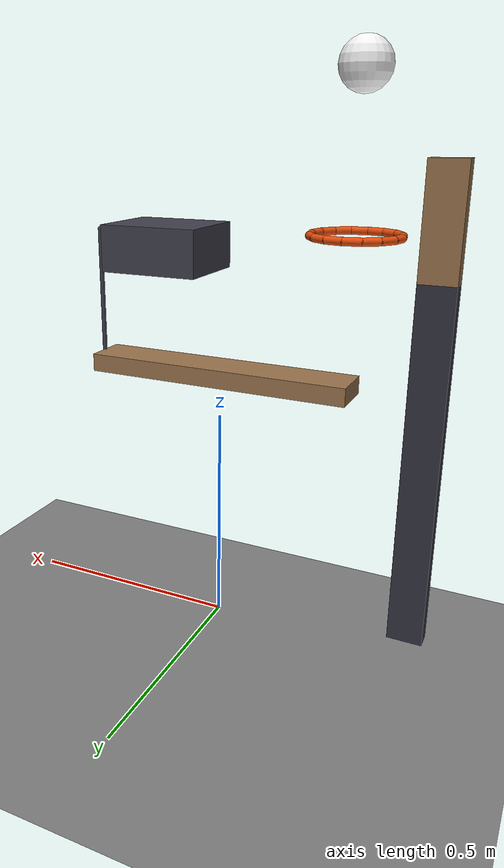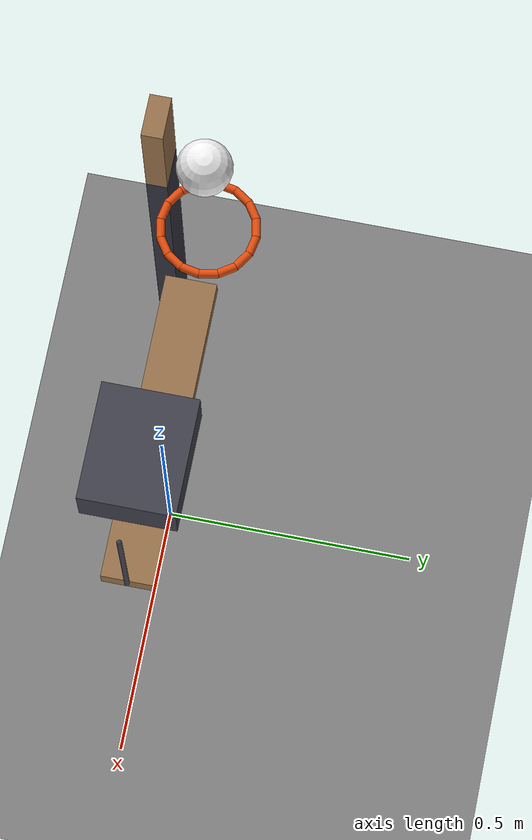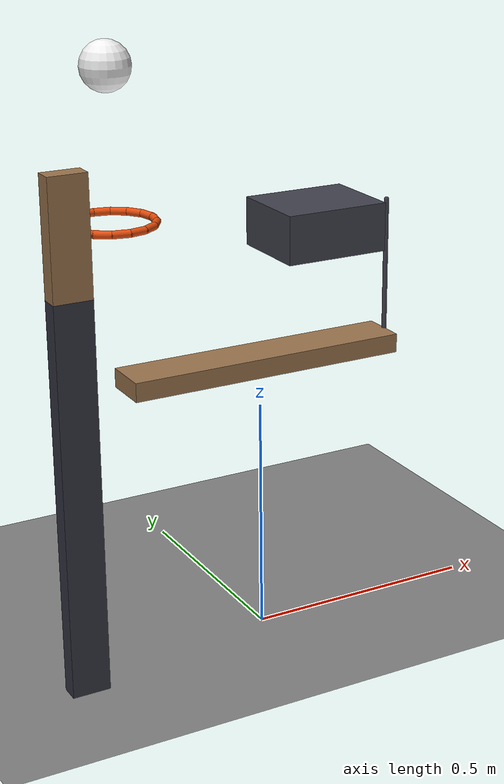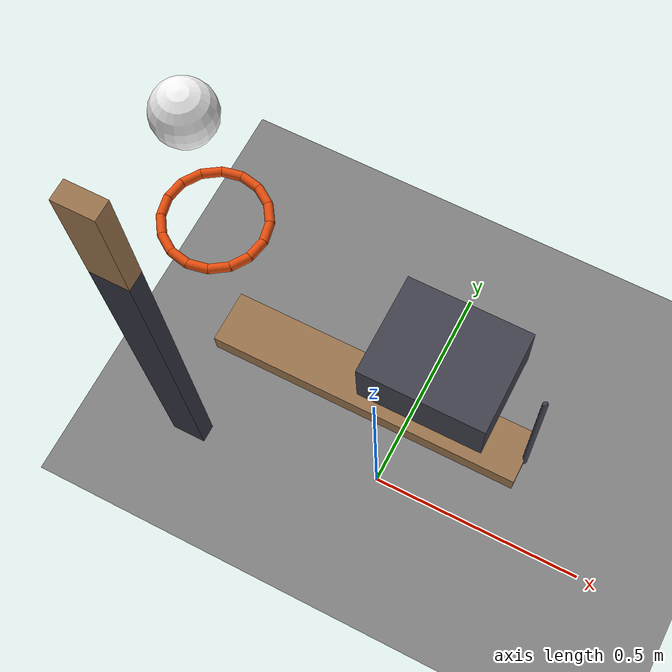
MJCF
<mujoco model="revised_falling_ball_lever_and_cart">
  <compiler angle="radian"/>
  <option timestep="0.002"/>
  <worldbody>
    <geom name="floor" type="plane" size="6 6 0.1" friction="0.72 0.005 0.002"/>
    <body name="lever1" pos="0 0 0.6">
      <joint name="lever_hinge" type="hinge" pos="0 0 0" axis="0 1 0" limited="true" range="-0.785398 0" damping="0.04"/>
      <geom name="lever1" type="box" pos="0 0 0" size="0.3 0.05 0.02" mass="0.49" friction="0.72 0.005 0.002" solref="0.01 1" rgba="0.6 0.45 0.3 1"/>
      <geom name="cart striker" type="capsule" size="0.005" fromto="0.3 0 0 0.3 0 0.3" mass="0.01" friction="0.72 0.005 0.002" solref="0.01 1" rgba="0.25 0.25 0.3 1"/>
    </body>
    <body name="ring1">
      <geom name="ring1_00" type="capsule" size="0.008" fromto="-0.212 0.04 0.92 -0.218699 0.0736761 0.92" friction="0.72 0.005 0.002" solref="0.01 1" rgba="0.9 0.3 0.05 1"/>
      <geom name="ring1_01" type="capsule" size="0.008" fromto="-0.218699 0.0736761 0.92 -0.237775 0.102225 0.92" friction="0.72 0.005 0.002" solref="0.01 1" rgba="0.9 0.3 0.05 1"/>
      <geom name="ring1_02" type="capsule" size="0.008" fromto="-0.237775 0.102225 0.92 -0.266324 0.121301 0.92" friction="0.72 0.005 0.002" solref="0.01 1" rgba="0.9 0.3 0.05 1"/>
      <geom name="ring1_03" type="capsule" size="0.008" fromto="-0.266324 0.121301 0.92 -0.3 0.128 0.92" friction="0.72 0.005 0.002" solref="0.01 1" rgba="0.9 0.3 0.05 1"/>
      <geom name="ring1_04" type="capsule" size="0.008" fromto="-0.3 0.128 0.92 -0.333676 0.121301 0.92" friction="0.72 0.005 0.002" solref="0.01 1" rgba="0.9 0.3 0.05 1"/>
      <geom name="ring1_05" type="capsule" size="0.008" fromto="-0.333676 0.121301 0.92 -0.362225 0.102225 0.92" friction="0.72 0.005 0.002" solref="0.01 1" rgba="0.9 0.3 0.05 1"/>
      <geom name="ring1_06" type="capsule" size="0.008" fromto="-0.362225 0.102225 0.92 -0.381301 0.0736761 0.92" friction="0.72 0.005 0.002" solref="0.01 1" rgba="0.9 0.3 0.05 1"/>
      <geom name="ring1_07" type="capsule" size="0.008" fromto="-0.381301 0.0736761 0.92 -0.388 0.04 0.92" friction="0.72 0.005 0.002" solref="0.01 1" rgba="0.9 0.3 0.05 1"/>
      <geom name="ring1_08" type="capsule" size="0.008" fromto="-0.388 0.04 0.92 -0.381301 0.00632386 0.92" friction="0.72 0.005 0.002" solref="0.01 1" rgba="0.9 0.3 0.05 1"/>
      <geom name="ring1_09" type="capsule" size="0.008" fromto="-0.381301 0.00632386 0.92 -0.362225 -0.0222254 0.92" friction="0.72 0.005 0.002" solref="0.01 1" rgba="0.9 0.3 0.05 1"/>
      <geom name="ring1_10" type="capsule" size="0.008" fromto="-0.362225 -0.0222254 0.92 -0.333676 -0.0413014 0.92" friction="0.72 0.005 0.002" solref="0.01 1" rgba="0.9 0.3 0.05 1"/>
      <geom name="ring1_11" type="capsule" size="0.008" fromto="-0.333676 -0.0413014 0.92 -0.3 -0.048 0.92" friction="0.72 0.005 0.002" solref="0.01 1" rgba="0.9 0.3 0.05 1"/>
      <geom name="ring1_12" type="capsule" size="0.008" fromto="-0.3 -0.048 0.92 -0.266324 -0.0413014 0.92" friction="0.72 0.005 0.002" solref="0.01 1" rgba="0.9 0.3 0.05 1"/>
      <geom name="ring1_13" type="capsule" size="0.008" fromto="-0.266324 -0.0413014 0.92 -0.237775 -0.0222254 0.92" friction="0.72 0.005 0.002" solref="0.01 1" rgba="0.9 0.3 0.05 1"/>
      <geom name="ring1_14" type="capsule" size="0.008" fromto="-0.237775 -0.0222254 0.92 -0.218699 0.00632386 0.92" friction="0.72 0.005 0.002" solref="0.01 1" rgba="0.9 0.3 0.05 1"/>
      <geom name="ring1_15" type="capsule" size="0.008" fromto="-0.218699 0.00632386 0.92 -0.212 0.04 0.92" friction="0.72 0.005 0.002" solref="0.01 1" rgba="0.9 0.3 0.05 1"/>
    </body>
    <body name="ball1" pos="-0.3 0.04 1.22">
      <freejoint/>
      <geom name="ball1" type="sphere" pos="0 0 0" size="0.05" mass="0.2" condim="6" friction="0.72 0.005 0.002" solref="0.01 1" rgba="0.95 0.95 0.95 1"/>
    </body>
    <body name="cart1" pos="0.13 0 1000.87">
      <joint name="cart_guide" type="hinge" pos="0 0 0" axis="0 1 0" limited="true" range="-0.174533 0.174533" damping="200000"/>
      <geom name="cart1" type="box" pos="0 0 -1000" size="0.11 0.09 0.05" mass="0.5" friction="0.72 0.005 0.002" solref="0.01 1" rgba="0.25 0.25 0.3 1"/>
    </body>
    <body name="domino support">
      <geom name="domino support" type="box" pos="-0.44 -0.08 0.41" size="0.04 0.02 0.41" friction="0.72 0.005 0.002" solref="0.01 1" rgba="0.2 0.2 0.25 1"/>
    </body>
    <body name="domino1" pos="-0.44 -0.08 0.94">
      <freejoint/>
      <geom name="domino1" type="box" pos="0 0 0" size="0.04 0.02 0.12" mass="0.25" friction="0.72 0.005 0.002" solref="0.01 1" rgba="0.6 0.45 0.3 1"/>
    </body>
  </worldbody>
  <keyframe>
    <key name="start" qpos="0 -0.3 0.04 1.22 1 0 0 0 0 -0.44 -0.08 0.94 1 0 0 0" qvel="0 0 0 0 0 0 0 0 0 0 0 0 0 0"/>
  </keyframe>
</mujoco>
